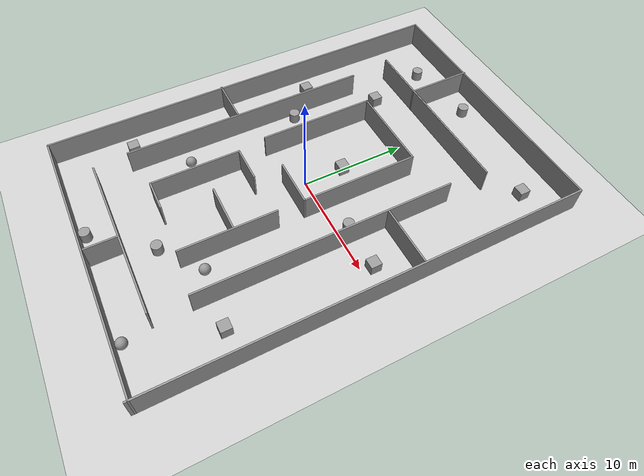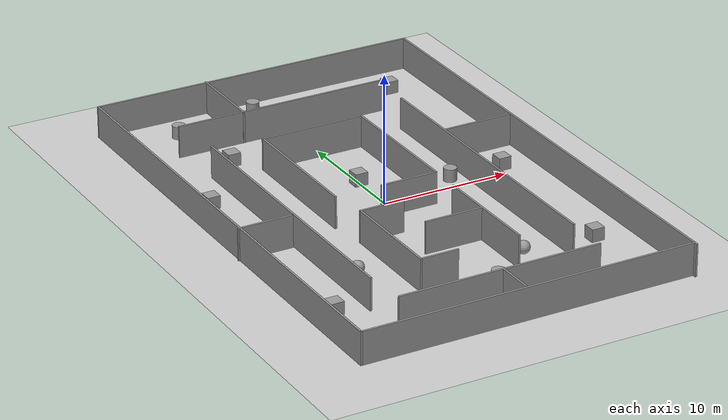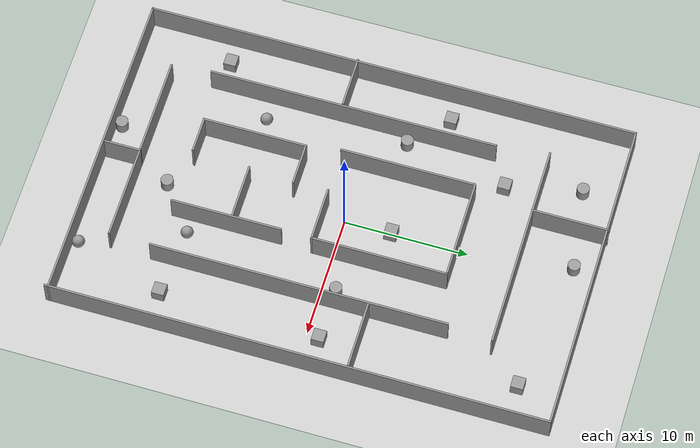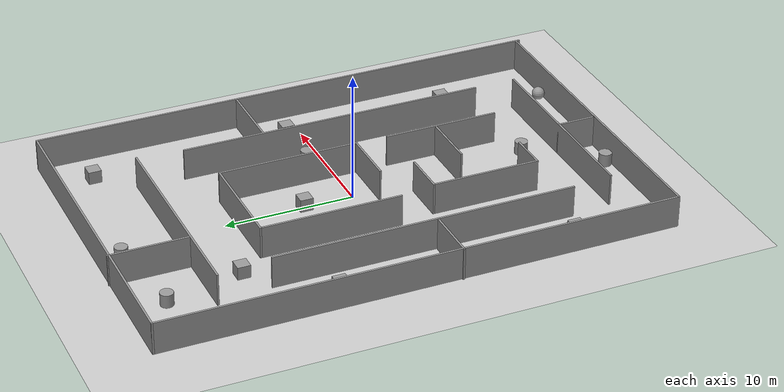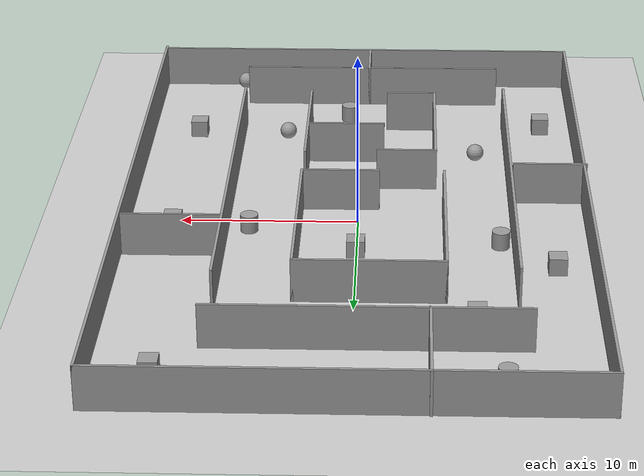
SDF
<sdf version="1.7">
 <world name="default">
  <light name="sun" type="directional">
   <pose>0 0 10 0 -0 0</pose>
   <diffuse>0.8 0.8 0.8 1</diffuse>
   <specular>0.2 0.2 0.2 1</specular>
   <attenuation>
    <range>1000</range>
    <constant>0.9</constant>
    <linear>0.01</linear>
    <quadratic>0.001</quadratic>
   </attenuation>
   <direction>-0.5 0.1 -0.9</direction>
   <spot><inner_angle>0</inner_angle><outer_angle>0</outer_angle><falloff>0</falloff></spot>
  </light>
  <model name="ground_plane">
   <static>1</static>
   <link name="link">
    <collision name="collision">
     <geometry><plane><normal>0 0 1</normal><size>100 100</size></plane></geometry>
     <surface>
      <contact><collide_bitmask>65535</collide_bitmask></contact>
      <friction><ode><mu>100</mu><mu2>50</mu2></ode></friction>
     </surface>
    </collision>
    <visual name="visual">
     <cast_shadows>0</cast_shadows>
     <geometry><plane><normal>0 0 1</normal><size>100 100</size></plane></geometry>
     <material>
      <script><uri>file://media/materials/scripts/gazebo.material</uri><name>Gazebo/Grey</name></script>
     </material>
    </visual>
   </link>
  </model>
  <gravity>0 0 -9.8</gravity>
  <magnetic_field>6e-06 2.3e-05 -4.2e-05</magnetic_field>
  <atmosphere type="adiabatic"/>
  <physics type="ode">
   <max_step_size>0.001</max_step_size>
   <real_time_factor>1</real_time_factor>
   <real_time_update_rate>1000</real_time_update_rate>
  </physics>
  <scene><ambient>0.4 0.4 0.4 1</ambient><background>0.7 0.7 0.7 1</background><shadows>1</shadows></scene>
  <spherical_coordinates>
   <surface_model>EARTH_WGS84</surface_model>
   <latitude_deg>0</latitude_deg>
   <longitude_deg>0</longitude_deg>
   <elevation>0</elevation>
   <heading_deg>0</heading_deg>
  </spherical_coordinates>
  <model name="house02">
   <link name="Wall_0">
    <collision name="Wall_0_Collision">
     <geometry><box><size>40 0.15 2.5</size></box></geometry>
     <pose>0 0 1.25 0 -0 0</pose>
    </collision>
    <visual name="Wall_0_Visual">
     <pose>0 0 1.25 0 -0 0</pose>
     <geometry><box><size>40 0.15 2.5</size></box></geometry>
     <material>
      <script><uri>file://media/materials/scripts/gazebo.material</uri><name>Gazebo/Grey</name></script>
      <ambient>1 1 1 1</ambient>
     </material>
     <meta><layer>0</layer></meta>
    </visual>
    <pose>-12.8717 0.078301 0 0 -0 -1.5708</pose>
   </link>
   <link name="Wall_10">
    <collision name="Wall_10_Collision">
     <geometry><box><size>17 0.15 2.5</size></box></geometry>
     <pose>0 0 1.25 0 -0 0</pose>
    </collision>
    <visual name="Wall_10_Visual">
     <pose>0 0 1.25 0 -0 0</pose>
     <geometry><box><size>17 0.15 2.5</size></box></geometry>
     <material>
      <script><uri>file://media/materials/scripts/gazebo.material</uri><name>Gazebo/Grey</name></script>
      <ambient>1 1 1 1</ambient>
     </material>
     <meta><layer>0</layer></meta>
    </visual>
    <pose>-0.761962 14.0177 0 0 -0 0</pose>
   </link>
   <link name="Wall_18">
    <collision name="Wall_18_Collision">
     <geometry><box><size>6.25 0.15 2.5</size></box></geometry>
     <pose>0 0 1.25 0 -0 0</pose>
    </collision>
    <visual name="Wall_18_Visual">
     <pose>0 0 1.25 0 -0 0</pose>
     <geometry><box><size>6.25 0.15 2.5</size></box></geometry>
     <material>
      <script><uri>file://media/materials/scripts/gazebo.material</uri><name>Gazebo/Grey</name></script>
      <ambient>1 1 1 1</ambient>
     </material>
     <meta><layer>0</layer></meta>
    </visual>
    <pose>-3.97282 17.0467 0 0 -0 1.5708</pose>
   </link>
   <link name="Wall_2">
    <collision name="Wall_2_Collision">
     <geometry><box><size>26 0.15 2.5</size></box></geometry>
     <pose>0 0 1.25 0 -0 0</pose>
    </collision>
    <visual name="Wall_2_Visual">
     <pose>0 0 1.25 0 -0 0</pose>
     <geometry><box><size>26 0.15 2.5</size></box></geometry>
     <material>
      <script><uri>file://media/materials/scripts/gazebo.material</uri><name>Gazebo/Grey</name></script>
      <ambient>1 1 1 1</ambient>
     </material>
     <meta><layer>0</layer></meta>
    </visual>
    <pose>0.053253 20.0033 0 0 -0 0</pose>
   </link>
   <link name="Wall_23">
    <collision name="Wall_23_Collision">
     <geometry><box><size>4.25 0.15 2.5</size></box></geometry>
     <pose>0 0 1.25 0 -0 0</pose>
    </collision>
    <visual name="Wall_23_Visual">
     <pose>0 0 1.25 0 -0 0</pose>
     <geometry><box><size>4.25 0.15 2.5</size></box></geometry>
     <material>
      <script><uri>file://media/materials/scripts/gazebo.material</uri><name>Gazebo/Grey</name></script>
      <ambient>1 1 1 1</ambient>
     </material>
     <meta><layer>0</layer></meta>
    </visual>
    <pose>-10.9283 -2.77645 0 0 -0 0</pose>
   </link>
   <link name="Wall_25">
    <collision name="Wall_25_Collision">
     <geometry><box><size>23.5 0.15 2.5</size></box></geometry>
     <pose>0 0 1.25 0 -0 0</pose>
    </collision>
    <visual name="Wall_25_Visual">
     <pose>0 0 1.25 0 -0 0</pose>
     <geometry><box><size>23.5 0.15 2.5</size></box></geometry>
     <material>
      <script><uri>file://media/materials/scripts/gazebo.material</uri><name>Gazebo/Grey</name></script>
      <ambient>1 1 1 1</ambient>
     </material>
     <meta><layer>0</layer></meta>
    </visual>
    <pose>-8.6713 -1.89976 0 0 -0 -1.5708</pose>
   </link>
   <link name="Wall_28">
    <collision name="Wall_28_Collision">
     <geometry><box><size>15.75 0.15 2.5</size></box></geometry>
     <pose>0 0 1.25 0 -0 0</pose>
    </collision>
    <visual name="Wall_28_Visual">
     <pose>0 0 1.25 0 -0 0</pose>
     <geometry><box><size>15.75 0.15 2.5</size></box></geometry>
     <material>
      <script><uri>file://media/materials/scripts/gazebo.material</uri><name>Gazebo/Grey</name></script>
      <ambient>1 1 1 1</ambient>
     </material>
     <meta><layer>0</layer></meta>
    </visual>
    <pose>-0.502137 -16.8048 0 0 -0 0</pose>
   </link>
   <link name="Wall_3">
    <collision name="Wall_3_Collision">
     <geometry><box><size>40.25 0.15 2.5</size></box></geometry>
     <pose>0 0 1.25 0 -0 0</pose>
    </collision>
    <visual name="Wall_3_Visual">
     <pose>0 0 1.25 0 -0 0</pose>
     <geometry><box><size>40.25 0.15 2.5</size></box></geometry>
     <material>
      <script><uri>file://media/materials/scripts/gazebo.material</uri><name>Gazebo/Grey</name></script>
      <ambient>1 1 1 1</ambient>
     </material>
     <meta><layer>0</layer></meta>
    </visual>
    <pose>12.9783 -0.046699 0 0 -0 -1.5708</pose>
   </link>
   <link name="Wall_30">
    <collision name="Wall_30_Collision">
     <geometry><box><size>3 0.15 2.5</size></box></geometry>
     <pose>0 0 1.25 0 -0 0</pose>
    </collision>
    <visual name="Wall_30_Visual">
     <pose>0 0 1.25 0 -0 0</pose>
     <geometry><box><size>3 0.15 2.5</size></box></geometry>
     <material>
      <script><uri>file://media/materials/scripts/gazebo.material</uri><name>Gazebo/Grey</name></script>
      <ambient>1 1 1 1</ambient>
     </material>
     <meta><layer>0</layer></meta>
    </visual>
    <pose>-0.303513 -18.2298 0 0 -0 -1.5708</pose>
   </link>
   <link name="Wall_32">
    <collision name="Wall_32_Collision">
     <geometry><box><size>24 0.15 2.5</size></box></geometry>
     <pose>0 0 1.25 0 -0 0</pose>
    </collision>
    <visual name="Wall_32_Visual">
     <pose>0 0 1.25 0 -0 0</pose>
     <geometry><box><size>24 0.15 2.5</size></box></geometry>
     <material>
      <script><uri>file://media/materials/scripts/gazebo.material</uri><name>Gazebo/Grey</name></script>
      <ambient>1 1 1 1</ambient>
     </material>
     <meta><layer>0</layer></meta>
    </visual>
    <pose>7.32594 -1.53448 0 0 -0 -1.5708</pose>
   </link>
   <link name="Wall_34">
    <collision name="Wall_34_Collision">
     <geometry><box><size>5.5 0.15 2.5</size></box></geometry>
     <pose>0 0 1.25 0 -0 0</pose>
    </collision>
    <visual name="Wall_34_Visual">
     <pose>0 0 1.25 0 -0 0</pose>
     <geometry><box><size>5.5 0.15 2.5</size></box></geometry>
     <material>
      <script><uri>file://media/materials/scripts/gazebo.material</uri><name>Gazebo/Grey</name></script>
      <ambient>1 1 1 1</ambient>
     </material>
     <meta><layer>0</layer></meta>
    </visual>
    <pose>10.124 4.11467 0 0 -0 0</pose>
   </link>
   <link name="Wall_36">
    <collision name="Wall_36_Collision">
     <geometry><box><size>11 0.15 2.5</size></box></geometry>
     <pose>0 0 1.25 0 -0 0</pose>
    </collision>
    <visual name="Wall_36_Visual">
     <pose>0 0 1.25 0 -0 0</pose>
     <geometry><box><size>11 0.15 2.5</size></box></geometry>
     <material>
      <script><uri>file://media/materials/scripts/gazebo.material</uri><name>Gazebo/Grey</name></script>
      <ambient>1 1 1 1</ambient>
     </material>
     <meta><layer>0</layer></meta>
    </visual>
    <pose>-4.85658 3.73496 0 0 -0 -1.5708</pose>
   </link>
   <link name="Wall_38">
    <collision name="Wall_38_Collision">
     <geometry><box><size>8.25 0.15 2.5</size></box></geometry>
     <pose>0 0 1.25 0 -0 0</pose>
    </collision>
    <visual name="Wall_38_Visual">
     <pose>0 0 1.25 0 -0 0</pose>
     <geometry><box><size>8.25 0.15 2.5</size></box></geometry>
     <material>
      <script><uri>file://media/materials/scripts/gazebo.material</uri><name>Gazebo/Grey</name></script>
      <ambient>1 1 1 1</ambient>
     </material>
     <meta><layer>0</layer></meta>
    </visual>
    <pose>-0.806576 9.15996 0 0 -0 0</pose>
   </link>
   <link name="Wall_41">
    <collision name="Wall_41_Collision">
     <geometry><box><size>11 0.15 2.5</size></box></geometry>
     <pose>0 0 1.25 0 -0 0</pose>
    </collision>
    <visual name="Wall_41_Visual">
     <pose>0 0 1.25 0 -0 0</pose>
     <geometry><box><size>11 0.15 2.5</size></box></geometry>
     <material>
      <script><uri>file://media/materials/scripts/gazebo.material</uri><name>Gazebo/Grey</name></script>
      <ambient>1 1 1 1</ambient>
     </material>
     <meta><layer>0</layer></meta>
    </visual>
    <pose>3.24342 3.73496 0 0 -0 -1.5708</pose>
   </link>
   <link name="Wall_42">
    <collision name="Wall_42_Collision">
     <geometry><box><size>4.5 0.15 2.5</size></box></geometry>
     <pose>0 0 1.25 0 -0 0</pose>
    </collision>
    <visual name="Wall_42_Visual">
     <pose>0 0 1.25 0 -0 0</pose>
     <geometry><box><size>4.5 0.15 2.5</size></box></geometry>
     <material>
      <script><uri>file://media/materials/scripts/gazebo.material</uri><name>Gazebo/Grey</name></script>
      <ambient>1 1 1 1</ambient>
     </material>
     <meta><layer>0</layer></meta>
    </visual>
    <pose>1.06842 -1.69004 0 0 -0 3.14159</pose>
   </link>
   <link name="Wall_44">
    <collision name="Wall_44_Collision">
     <geometry><box><size>3.5 0.15 2.5</size></box></geometry>
     <pose>0 0 1.25 0 -0 0</pose>
    </collision>
    <visual name="Wall_44_Visual">
     <pose>0 0 1.25 0 -0 0</pose>
     <geometry><box><size>3.5 0.15 2.5</size></box></geometry>
     <material>
      <script><uri>file://media/materials/scripts/gazebo.material</uri><name>Gazebo/Grey</name></script>
      <ambient>1 1 1 1</ambient>
     </material>
     <meta><layer>0</layer></meta>
    </visual>
    <pose>-2.71678 -4.48114 0 0 -0 3.14159</pose>
   </link>
   <link name="Wall_45">
    <collision name="Wall_45_Collision">
     <geometry><box><size>8.5 0.15 2.5</size></box></geometry>
     <pose>0 0 1.25 0 -0 0</pose>
    </collision>
    <visual name="Wall_45_Visual">
     <pose>0 0 1.25 0 -0 0</pose>
     <geometry><box><size>8.5 0.15 2.5</size></box></geometry>
     <material>
      <script><uri>file://media/materials/scripts/gazebo.material</uri><name>Gazebo/Grey</name></script>
      <ambient>1 1 1 1</ambient>
     </material>
     <meta><layer>0</layer></meta>
    </visual>
    <pose>-4.39178 -8.65614 0 0 -0 -1.5708</pose>
   </link>
   <link name="Wall_46">
    <collision name="Wall_46_Collision">
     <geometry><box><size>3 0.15 2.5</size></box></geometry>
     <pose>0 0 1.25 0 -0 0</pose>
    </collision>
    <visual name="Wall_46_Visual">
     <pose>0 0 1.25 0 -0 0</pose>
     <geometry><box><size>3 0.15 2.5</size></box></geometry>
     <material>
      <script><uri>file://media/materials/scripts/gazebo.material</uri><name>Gazebo/Grey</name></script>
      <ambient>1 1 1 1</ambient>
     </material>
     <meta><layer>0</layer></meta>
    </visual>
    <pose>-2.96678 -12.8311 0 0 -0 0</pose>
   </link>
   <link name="Wall_48">
    <collision name="Wall_48_Collision">
     <geometry><box><size>4.5 0.15 2.5</size></box></geometry>
     <pose>0 0 1.25 0 -0 0</pose>
    </collision>
    <visual name="Wall_48_Visual">
     <pose>0 0 1.25 0 -0 0</pose>
     <geometry><box><size>4.5 0.15 2.5</size></box></geometry>
     <material>
      <script><uri>file://media/materials/scripts/gazebo.material</uri><name>Gazebo/Grey</name></script>
      <ambient>1 1 1 1</ambient>
     </material>
     <meta><layer>0</layer></meta>
    </visual>
    <pose>0.881258 -8.16131 0 0 -0 0</pose>
   </link>
   <link name="Wall_50">
    <collision name="Wall_50_Collision">
     <geometry><box><size>9 0.15 2.5</size></box></geometry>
     <pose>0 0 1.25 0 -0 0</pose>
    </collision>
    <visual name="Wall_50_Visual">
     <pose>0 0 1.25 0 -0 0</pose>
     <geometry><box><size>9 0.15 2.5</size></box></geometry>
     <material>
      <script><uri>file://media/materials/scripts/gazebo.material</uri><name>Gazebo/Grey</name></script>
      <ambient>1 1 1 1</ambient>
     </material>
     <meta><layer>0</layer></meta>
    </visual>
    <pose>3.20047 -8.62712 0 0 -0 -1.5708</pose>
   </link>
   <link name="Wall_6">
    <collision name="Wall_6_Collision">
     <geometry><box><size>26 0.15 2.5</size></box></geometry>
     <pose>0 0 1.25 0 -0 0</pose>
    </collision>
    <visual name="Wall_6_Visual">
     <pose>0 0 1.25 0 -0 0</pose>
     <geometry><box><size>26 0.15 2.5</size></box></geometry>
     <material>
      <script><uri>file://media/materials/scripts/gazebo.material</uri><name>Gazebo/Grey</name></script>
      <ambient>1 1 1 1</ambient>
     </material>
     <meta><layer>0</layer></meta>
    </visual>
    <pose>0.053253 -19.8467 0 0 -0 0</pose>
   </link>
   <static>1</static>
  </model>
  <model name="unit_box">
   <pose>10.3755 1.05367 0.499995 -1e-05 -0 -0</pose>
   <static>1</static>
   <link name="link">
    <inertial>
     <mass>1</mass>
     <inertia>
      <ixx>0.166667</ixx>
      <ixy>0</ixy>
      <ixz>0</ixz>
      <iyy>0.166667</iyy>
      <iyz>0</iyz>
      <izz>0.166667</izz>
     </inertia>
    </inertial>
    <collision name="collision"><geometry><box><size>1 1 1</size></box></geometry></collision>
    <visual name="visual">
     <geometry><box><size>1 1 1</size></box></geometry>
     <material>
      <script><name>Gazebo/Grey</name><uri>file://media/materials/scripts/gazebo.material</uri></script>
     </material>
    </visual>
   </link>
  </model>
  <model name="unit_cylinder">
   <static>1</static>
   <pose>-1.05077 18.2301 0.5 0 -0 0</pose>
   <link name="link">
    <inertial>
     <mass>1</mass>
     <inertia><ixx>0.145833</ixx><ixy>0</ixy><ixz>0</ixz><iyy>0.145833</iyy><iyz>0</iyz><izz>0.125</izz></inertia>
    </inertial>
    <collision name="collision">
     <geometry><cylinder><radius>0.5</radius><length>1</length></cylinder></geometry>
    </collision>
    <visual name="visual">
     <geometry><cylinder><radius>0.5</radius><length>1</length></cylinder></geometry>
     <material>
      <script><name>Gazebo/Grey</name><uri>file://media/materials/scripts/gazebo.material</uri></script>
     </material>
    </visual>
   </link>
  </model>
  <model name="unit_box_0">
   <static>1</static>
   <pose>9.85411 16.7281 0.499995 -1e-05 -0 -0</pose>
   <link name="link">
    <inertial>
     <mass>1</mass>
     <inertia>
      <ixx>0.166667</ixx>
      <ixy>0</ixy>
      <ixz>0</ixz>
      <iyy>0.166667</iyy>
      <iyz>0</iyz>
      <izz>0.166667</izz>
     </inertia>
    </inertial>
    <collision name="collision"><geometry><box><size>1 1 1</size></box></geometry></collision>
    <visual name="visual">
     <geometry><box><size>1 1 1</size></box></geometry>
     <material>
      <script><name>Gazebo/Grey</name><uri>file://media/materials/scripts/gazebo.material</uri></script>
     </material>
    </visual>
   </link>
  </model>
  <model name="unit_box_1">
   <static>1</static>
   <pose>0.031069 3.82006 0.5 0 -0 0</pose>
   <link name="link">
    <inertial>
     <mass>1</mass>
     <inertia>
      <ixx>0.166667</ixx>
      <ixy>0</ixy>
      <ixz>0</ixz>
      <iyy>0.166667</iyy>
      <iyz>0</iyz>
      <izz>0.166667</izz>
     </inertia>
    </inertial>
    <collision name="collision"><geometry><box><size>1 1 1</size></box></geometry></collision>
    <visual name="visual">
     <geometry><box><size>1 1 1</size></box></geometry>
     <material>
      <script><name>Gazebo/Grey</name><uri>file://media/materials/scripts/gazebo.material</uri></script>
     </material>
    </visual>
   </link>
  </model>
  <model name="unit_box_2">
   <static>1</static>
   <pose>10.0844 -11.8953 0.5 0 -0 0</pose>
   <link name="link">
    <inertial>
     <mass>1</mass>
     <inertia>
      <ixx>0.166667</ixx>
      <ixy>0</ixy>
      <ixz>0</ixz>
      <iyy>0.166667</iyy>
      <iyz>0</iyz>
      <izz>0.166667</izz>
     </inertia>
    </inertial>
    <collision name="collision"><geometry><box><size>1 1 1</size></box></geometry></collision>
    <visual name="visual">
     <geometry><box><size>1 1 1</size></box></geometry>
     <material>
      <script><name>Gazebo/Grey</name><uri>file://media/materials/scripts/gazebo.material</uri></script>
     </material>
    </visual>
   </link>
  </model>
  <model name="unit_cylinder_0">
   <static>1</static>
   <pose>0.853548 -14.2595 0.5 0 -0 0</pose>
   <link name="link">
    <inertial>
     <mass>1</mass>
     <inertia><ixx>0.145833</ixx><ixy>0</ixy><ixz>0</ixz><iyy>0.145833</iyy><iyz>0</iyz><izz>0.125</izz></inertia>
    </inertial>
    <collision name="collision">
     <geometry><cylinder><radius>0.5</radius><length>1</length></cylinder></geometry>
    </collision>
    <visual name="visual">
     <geometry><cylinder><radius>0.5</radius><length>1</length></cylinder></geometry>
     <material>
      <script><name>Gazebo/Grey</name><uri>file://media/materials/scripts/gazebo.material</uri></script>
     </material>
    </visual>
   </link>
  </model>
  <model name="unit_sphere">
   <static>1</static>
   <pose>-6.84068 -8.47222 0.5 0 -0 0</pose>
   <link name="link">
    <inertial>
     <mass>1</mass>
     <inertia><ixx>0.1</ixx><ixy>0</ixy><ixz>0</ixz><iyy>0.1</iyy><iyz>0</iyz><izz>0.1</izz></inertia>
    </inertial>
    <collision name="collision"><geometry><sphere><radius>0.5</radius></sphere></geometry></collision>
    <visual name="visual">
     <geometry><sphere><radius>0.5</radius></sphere></geometry>
     <material>
      <script><name>Gazebo/Grey</name><uri>file://media/materials/scripts/gazebo.material</uri></script>
     </material>
    </visual>
   </link>
  </model>
  <model name="unit_box_3">
   <static>1</static>
   <pose>-6.41058 11.1984 0.499995 -1e-05 0 0</pose>
   <link name="link">
    <inertial>
     <mass>1</mass>
     <inertia>
      <ixx>0.166667</ixx>
      <ixy>0</ixy>
      <ixz>0</ixz>
      <iyy>0.166667</iyy>
      <iyz>0</iyz>
      <izz>0.166667</izz>
     </inertia>
    </inertial>
    <collision name="collision"><geometry><box><size>1 1 1</size></box></geometry></collision>
    <visual name="visual">
     <geometry><box><size>1 1 1</size></box></geometry>
     <material>
      <script><name>Gazebo/Grey</name><uri>file://media/materials/scripts/gazebo.material</uri></script>
     </material>
    </visual>
   </link>
  </model>
  <model name="unit_box_4">
   <static>1</static>
   <pose>-10.956 -12.7143 0.5 0 -0 0</pose>
   <link name="link">
    <inertial>
     <mass>1</mass>
     <inertia>
      <ixx>0.166667</ixx>
      <ixy>0</ixy>
      <ixz>0</ixz>
      <iyy>0.166667</iyy>
      <iyz>0</iyz>
      <izz>0.166667</izz>
     </inertia>
    </inertial>
    <collision name="collision"><geometry><box><size>1 1 1</size></box></geometry></collision>
    <visual name="visual">
     <geometry><box><size>1 1 1</size></box></geometry>
     <material>
      <script><name>Gazebo/Grey</name><uri>file://media/materials/scripts/gazebo.material</uri></script>
     </material>
    </visual>
   </link>
  </model>
  <model name="unit_cylinder_1">
   <static>1</static>
   <pose>6.07325 1.11718 0.5 0 -0 0</pose>
   <link name="link">
    <inertial>
     <mass>1</mass>
     <inertia><ixx>0.145833</ixx><ixy>0</ixy><ixz>0</ixz><iyy>0.145833</iyy><iyz>0</iyz><izz>0.125</izz></inertia>
    </inertial>
    <collision name="collision">
     <geometry><cylinder><radius>0.5</radius><length>1</length></cylinder></geometry>
    </collision>
    <visual name="visual">
     <geometry><cylinder><radius>0.5</radius><length>1</length></cylinder></geometry>
     <material>
      <script><name>Gazebo/Grey</name><uri>file://media/materials/scripts/gazebo.material</uri></script>
     </material>
    </visual>
   </link>
  </model>
  <model name="unit_box_5">
   <static>1</static>
   <pose>-10.9061 5.5908 0.5 0 -0 0</pose>
   <link name="link">
    <inertial>
     <mass>1</mass>
     <inertia>
      <ixx>0.166667</ixx>
      <ixy>0</ixy>
      <ixz>0</ixz>
      <iyy>0.166667</iyy>
      <iyz>0</iyz>
      <izz>0.166667</izz>
     </inertia>
    </inertial>
    <collision name="collision"><geometry><box><size>1 1 1</size></box></geometry></collision>
    <visual name="visual">
     <geometry><box><size>1 1 1</size></box></geometry>
     <material>
      <script><name>Gazebo/Grey</name><uri>file://media/materials/scripts/gazebo.material</uri></script>
     </material>
    </visual>
   </link>
  </model>
  <model name="unit_cylinder_2">
   <static>1</static>
   <pose>-7.73359 17.1945 0.5 0 -0 0</pose>
   <link name="link">
    <inertial>
     <mass>1</mass>
     <inertia><ixx>0.145833</ixx><ixy>0</ixy><ixz>0</ixz><iyy>0.145833</iyy><iyz>0</iyz><izz>0.125</izz></inertia>
    </inertial>
    <collision name="collision">
     <geometry><cylinder><radius>0.5</radius><length>1</length></cylinder></geometry>
    </collision>
    <visual name="visual">
     <geometry><cylinder><radius>0.5</radius><length>1</length></cylinder></geometry>
     <material>
      <script><name>Gazebo/Grey</name><uri>file://media/materials/scripts/gazebo.material</uri></script>
     </material>
    </visual>
   </link>
  </model>
  <model name="unit_sphere_0">
   <static>1</static>
   <pose>4.57237 -11.428 0.5 0 -0 0</pose>
   <link name="link">
    <inertial>
     <mass>1</mass>
     <inertia><ixx>0.1</ixx><ixy>0</ixy><ixz>0</ixz><iyy>0.1</iyy><iyz>0</iyz><izz>0.1</izz></inertia>
    </inertial>
    <collision name="collision"><geometry><sphere><radius>0.5</radius></sphere></geometry></collision>
    <visual name="visual">
     <geometry><sphere><radius>0.5</radius></sphere></geometry>
     <material>
      <script><name>Gazebo/Grey</name><uri>file://media/materials/scripts/gazebo.material</uri></script>
     </material>
    </visual>
   </link>
  </model>
  <model name="unit_cylinder_3">
   <static>1</static>
   <pose>-7.94818 2.79763 0.5 0 -0 0</pose>
   <link name="link">
    <inertial>
     <mass>1</mass>
     <inertia><ixx>0.145833</ixx><ixy>0</ixy><ixz>0</ixz><iyy>0.145833</iyy><iyz>0</iyz><izz>0.125</izz></inertia>
    </inertial>
    <collision name="collision">
     <geometry><cylinder><radius>0.5</radius><length>1</length></cylinder></geometry>
    </collision>
    <visual name="visual">
     <geometry><cylinder><radius>0.5</radius><length>1</length></cylinder></geometry>
     <material>
      <script><name>Gazebo/Grey</name><uri>file://media/materials/scripts/gazebo.material</uri></script>
     </material>
    </visual>
   </link>
  </model>
  <model name="unit_sphere_1">
   <static>1</static>
   <pose>7.7531 -19.2796 0.5 0 -0 0</pose>
   <link name="link">
    <inertial>
     <mass>1</mass>
     <inertia><ixx>0.1</ixx><ixy>0</ixy><ixz>0</ixz><iyy>0.1</iyy><iyz>0</iyz><izz>0.1</izz></inertia>
    </inertial>
    <collision name="collision"><geometry><sphere><radius>0.5</radius></sphere></geometry></collision>
    <visual name="visual">
     <geometry><sphere><radius>0.5</radius></sphere></geometry>
     <material>
      <script><name>Gazebo/Grey</name><uri>file://media/materials/scripts/gazebo.material</uri></script>
     </material>
    </visual>
   </link>
  </model>
  <model name="unit_cylinder_4">
   <static>1</static>
   <pose>-3.12595 -19.3086 0.5 0 -0 0</pose>
   <link name="link">
    <inertial>
     <mass>1</mass>
     <inertia><ixx>0.145833</ixx><ixy>0</ixy><ixz>0</ixz><iyy>0.145833</iyy><iyz>0</iyz><izz>0.125</izz></inertia>
    </inertial>
    <collision name="collision">
     <geometry><cylinder><radius>0.5</radius><length>1</length></cylinder></geometry>
    </collision>
    <visual name="visual">
     <geometry><cylinder><radius>0.5</radius><length>1</length></cylinder></geometry>
     <material>
      <script><name>Gazebo/Grey</name><uri>file://media/materials/scripts/gazebo.material</uri></script>
     </material>
    </visual>
   </link>
  </model>
 </world>
</sdf>
